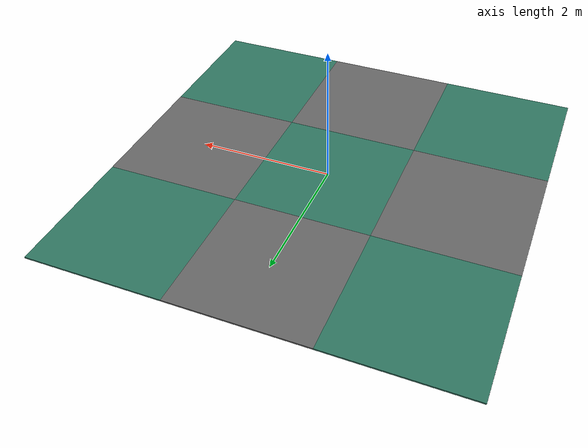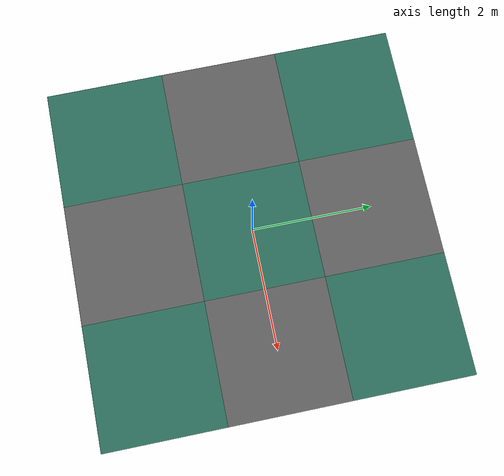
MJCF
<mujoco model="friction_floor_9x9patch">
  <compiler angle="radian" />
  <asset>
    <texture name='a' builtin="gradient" height="100" rgb1="1 1 1" rgb2="0 0 0" type="skybox" width="100"/>
    <texture name="texplane0" type="2d" builtin="checker" rgb1="0.14 0.83 0.43" rgb2="0.23 0.09 0.33" width="100" height="100" mark="cross" markrgb=".8 .8 .8"/>
    <texture name="texplane1" type="2d" builtin="checker" rgb1="0 0 0" rgb2="0.8 0.8 0.8" width="100" height="100" mark="cross" markrgb=".8 .8 .8"/>
    <material name="matplane0" reflectance="0.3" texture="texplane0" texrepeat="3 3" texuniform="true"/>
    <material name="matplane1" reflectance="0.3" texture="texplane1" texrepeat="3 3" texuniform="true"/>
  </asset>
  <visual>
    <headlight ambient="0.6 0.6 0.6" diffuse="0.5 0.5 0.5" specular="0.2 0.2 0.2"/>
    <map znear="0.001" />
  </visual>
  <worldbody>
    <geom contype="1" friction="1 0 0.001" name="floor0" pos="0 0 0" euler="0 0 0" size="1 1 0.01" type="box" material="matplane0" condim="6"/>
    <geom contype="1" friction="1 0 0.02" name="floor1" pos="2 0 0" euler="0 0 0" size="1 1 0.01" type="box" material="matplane1" condim="6"/>
    <geom contype="1" friction="1 0 0.001" name="floor2" pos="2 2 0" euler="0 0 0" size="1 1 0.01" type="box" material="matplane0" condim="6"/>
    <geom contype="1" friction="1 0 0.02" name="floor3" pos="0 2 0" euler="0 0 0" size="1 1 0.01" type="box" material="matplane1" condim="6"/>
    <geom contype="1" friction="1 0 0.001" name="floor4" pos="-2 -2 0" euler="0 0 0" size="1 1 0.01" type="box" material="matplane0" condim="6"/>
    <geom contype="1" friction="1 0 0.02" name="floor5" pos="0 -2 0" euler="0 0 0" size="1 1 0.01" type="box" material="matplane1" condim="6"/>
    <geom contype="1" friction="1 0 0.001" name="floor6" pos="-2 2 0" euler="0 0 0" size="1 1 0.01" type="box" material="matplane0" condim="6"/>
    <geom contype="1" friction="1 0 0.02" name="floor7" pos="-2 0 0" euler="0 0 0" size="1 1 0.01" type="box" material="matplane1" condim="6"/>
    <geom contype="1" friction="1 0 0.001" name="floor8" pos="2 -2 0" euler="0 0 0" size="1 1 0.01" type="box" material="matplane0" condim="6"/>
  </worldbody>
</mujoco>
